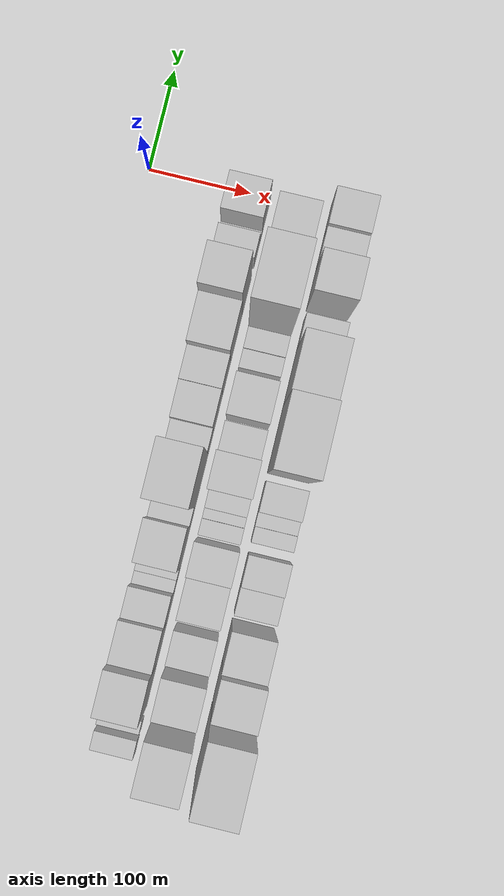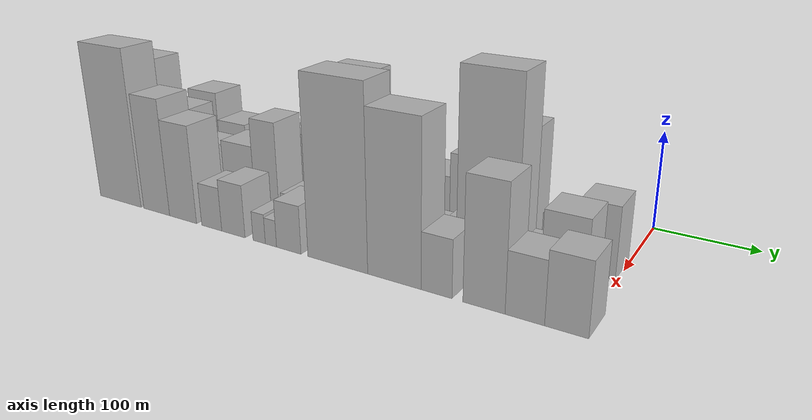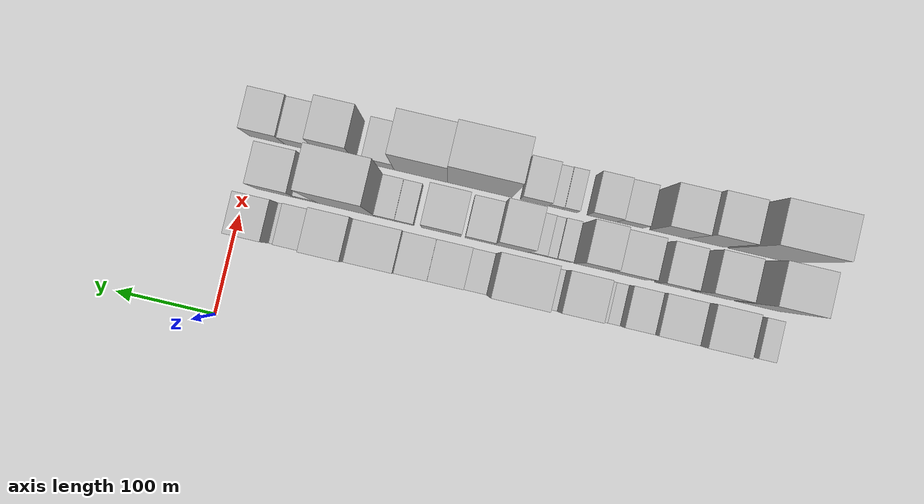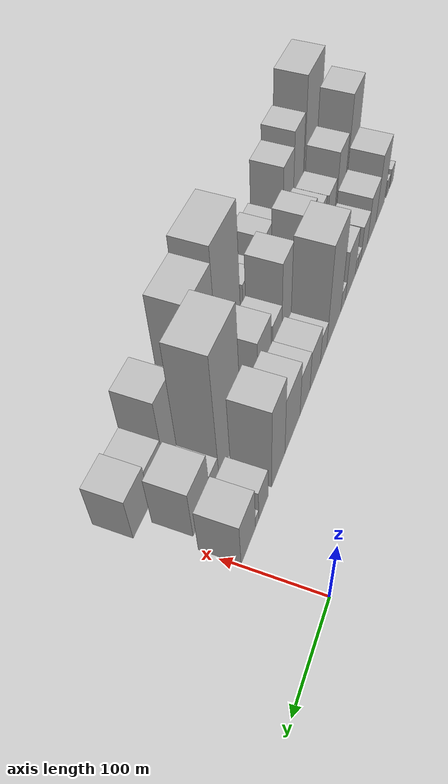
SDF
<sdf version="1.6">
 <world name="default">
  <model name="building_1">
   <static>1</static>
   <pose>100.0000 -527.3287 0 0.000000 0.000000 0.000000</pose>
   <link name="link">
    <pose>0 0 15.00 0 0 0</pose>
    <collision name="collision"><geometry><box><size>40.0000 17.3426 30.0000</size></box></geometry></collision>
    <visual name="visual">
     <cast_shadows>0</cast_shadows>
     <geometry><box><size>40.0000 17.3426 30.0000</size></box></geometry>
     <material>
      <script>
       <uri>model://HANNAS_wall/materials/scripts</uri>
       <uri>model://HANNAS_wall/materials/textures</uri>
       <name>vrc/HANNAS_wall</name>
      </script>
     </material>
    </visual>
   </link>
  </model>
  <model name="building_2">
   <static>1</static>
   <pose>100.0000 -507.4993 0 0.000000 0.000000 0.000000</pose>
   <link name="link">
    <pose>0 0 13.50 0 0 0</pose>
    <collision name="collision"><geometry><box><size>40.0000 12.3162 27.0000</size></box></geometry></collision>
    <visual name="visual">
     <cast_shadows>0</cast_shadows>
     <geometry><box><size>40.0000 12.3162 27.0000</size></box></geometry>
     <material>
      <script>
       <uri>model://HANNAS_wall/materials/scripts</uri>
       <uri>model://HANNAS_wall/materials/textures</uri>
       <name>vrc/HANNAS_wall</name>
      </script>
     </material>
    </visual>
   </link>
  </model>
  <model name="building_3">
   <static>1</static>
   <pose>100.0000 -472.0007 0 0.000000 0.000000 0.000000</pose>
   <link name="link">
    <pose>0 0 51.00 0 0 0</pose>
    <collision name="collision"><geometry><box><size>40.0000 40.6811 102.0000</size></box></geometry></collision>
    <visual name="visual">
     <cast_shadows>0</cast_shadows>
     <geometry><box><size>40.0000 40.6811 102.0000</size></box></geometry>
     <material>
      <script>
       <uri>model://HANNAS_wall/materials/scripts</uri>
       <uri>model://HANNAS_wall/materials/textures</uri>
       <name>vrc/HANNAS_wall</name>
      </script>
     </material>
    </visual>
   </link>
  </model>
  <model name="building_4">
   <static>1</static>
   <pose>100.0000 -432.3073 0 0.000000 0.000000 0.000000</pose>
   <link name="link">
    <pose>0 0 36.00 0 0 0</pose>
    <collision name="collision"><geometry><box><size>40.0000 38.7056 72.0000</size></box></geometry></collision>
    <visual name="visual">
     <cast_shadows>0</cast_shadows>
     <geometry><box><size>40.0000 38.7056 72.0000</size></box></geometry>
     <material>
      <script>
       <uri>model://HANNAS_wall/materials/scripts</uri>
       <uri>model://HANNAS_wall/materials/textures</uri>
       <name>vrc/HANNAS_wall</name>
      </script>
     </material>
    </visual>
   </link>
  </model>
  <model name="building_5">
   <static>1</static>
   <pose>100.0000 -398.5866 0 0.000000 0.000000 0.000000</pose>
   <link name="link">
    <pose>0 0 27.00 0 0 0</pose>
    <collision name="collision"><geometry><box><size>40.0000 28.7358 54.0000</size></box></geometry></collision>
    <visual name="visual">
     <cast_shadows>0</cast_shadows>
     <geometry><box><size>40.0000 28.7358 54.0000</size></box></geometry>
     <material>
      <script>
       <uri>model://HANNAS_wall/materials/scripts</uri>
       <uri>model://HANNAS_wall/materials/textures</uri>
       <name>vrc/HANNAS_wall</name>
      </script>
     </material>
    </visual>
   </link>
  </model>
  <model name="building_6">
   <static>1</static>
   <pose>100.0000 -378.2275 0 0.000000 0.000000 0.000000</pose>
   <link name="link">
    <pose>0 0 12.00 0 0 0</pose>
    <collision name="collision"><geometry><box><size>40.0000 11.9825 24.0000</size></box></geometry></collision>
    <visual name="visual">
     <cast_shadows>0</cast_shadows>
     <geometry><box><size>40.0000 11.9825 24.0000</size></box></geometry>
     <material>
      <script>
       <uri>model://HANNAS_wall/materials/scripts</uri>
       <uri>model://HANNAS_wall/materials/textures</uri>
       <name>vrc/HANNAS_wall</name>
      </script>
     </material>
    </visual>
   </link>
  </model>
  <model name="building_7">
   <static>1</static>
   <pose>100.0000 -366.8585 0 0.000000 0.000000 0.000000</pose>
   <link name="link">
    <pose>0 0 12.00 0 0 0</pose>
    <collision name="collision"><geometry><box><size>40.0000 10.7555 24.0000</size></box></geometry></collision>
    <visual name="visual">
     <cast_shadows>0</cast_shadows>
     <geometry><box><size>40.0000 10.7555 24.0000</size></box></geometry>
     <material>
      <script>
       <uri>model://HANNAS_wall/materials/scripts</uri>
       <uri>model://HANNAS_wall/materials/textures</uri>
       <name>vrc/HANNAS_wall</name>
      </script>
     </material>
    </visual>
   </link>
  </model>
  <model name="building_8">
   <static>1</static>
   <pose>100.0000 -341.6340 0 0.000000 0.000000 0.000000</pose>
   <link name="link">
    <pose>0 0 37.50 0 0 0</pose>
    <collision name="collision"><geometry><box><size>40.0000 39.6934 75.0000</size></box></geometry></collision>
    <visual name="visual">
     <cast_shadows>0</cast_shadows>
     <geometry><box><size>40.0000 39.6934 75.0000</size></box></geometry>
     <material>
      <script>
       <uri>model://HANNAS_wall/materials/scripts</uri>
       <uri>model://HANNAS_wall/materials/textures</uri>
       <name>vrc/HANNAS_wall</name>
      </script>
     </material>
    </visual>
   </link>
  </model>
  <model name="building_9">
   <static>1</static>
   <pose>100.0000 -312.8995 0 0.000000 0.000000 0.000000</pose>
   <link name="link">
    <pose>0 0 15.00 0 0 0</pose>
    <collision name="collision"><geometry><box><size>40.0000 17.7757 30.0000</size></box></geometry></collision>
    <visual name="visual">
     <cast_shadows>0</cast_shadows>
     <geometry><box><size>40.0000 17.7757 30.0000</size></box></geometry>
     <material>
      <script>
       <uri>model://HANNAS_wall/materials/scripts</uri>
       <uri>model://HANNAS_wall/materials/textures</uri>
       <name>vrc/HANNAS_wall</name>
      </script>
     </material>
    </visual>
   </link>
  </model>
  <model name="building_10">
   <static>1</static>
   <pose>100.0000 -278.1690 0 0.000000 0.000000 0.000000</pose>
   <link name="link">
    <pose>0 0 75.00 0 0 0</pose>
    <collision name="collision"><geometry><box><size>40.0000 51.6853 150.0000</size></box></geometry></collision>
    <visual name="visual">
     <cast_shadows>0</cast_shadows>
     <geometry><box><size>40.0000 51.6853 150.0000</size></box></geometry>
     <material>
      <script>
       <uri>model://HANNAS_wall/materials/scripts</uri>
       <uri>model://HANNAS_wall/materials/textures</uri>
       <name>vrc/HANNAS_wall</name>
      </script>
     </material>
    </visual>
   </link>
  </model>
  <model name="building_11">
   <static>1</static>
   <pose>100.0000 -241.2043 0 0.000000 0.000000 0.000000</pose>
   <link name="link">
    <pose>0 0 21.00 0 0 0</pose>
    <collision name="collision"><geometry><box><size>40.0000 22.2441 42.0000</size></box></geometry></collision>
    <visual name="visual">
     <cast_shadows>0</cast_shadows>
     <geometry><box><size>40.0000 22.2441 42.0000</size></box></geometry>
     <material>
      <script>
       <uri>model://HANNAS_wall/materials/scripts</uri>
       <uri>model://HANNAS_wall/materials/textures</uri>
       <name>vrc/HANNAS_wall</name>
      </script>
     </material>
    </visual>
   </link>
  </model>
  <model name="building_12">
   <static>1</static>
   <pose>100.0000 -212.5697 0 0.000000 0.000000 0.000000</pose>
   <link name="link">
    <pose>0 0 30.00 0 0 0</pose>
    <collision name="collision"><geometry><box><size>40.0000 35.0252 60.0000</size></box></geometry></collision>
    <visual name="visual">
     <cast_shadows>0</cast_shadows>
     <geometry><box><size>40.0000 35.0252 60.0000</size></box></geometry>
     <material>
      <script>
       <uri>model://HANNAS_wall/materials/scripts</uri>
       <uri>model://HANNAS_wall/materials/textures</uri>
       <name>vrc/HANNAS_wall</name>
      </script>
     </material>
    </visual>
   </link>
  </model>
  <model name="building_13">
   <static>1</static>
   <pose>100.0000 -179.1213 0 0.000000 0.000000 0.000000</pose>
   <link name="link">
    <pose>0 0 31.50 0 0 0</pose>
    <collision name="collision"><geometry><box><size>40.0000 31.8716 63.0000</size></box></geometry></collision>
    <visual name="visual">
     <cast_shadows>0</cast_shadows>
     <geometry><box><size>40.0000 31.8716 63.0000</size></box></geometry>
     <material>
      <script>
       <uri>model://HANNAS_wall/materials/scripts</uri>
       <uri>model://HANNAS_wall/materials/textures</uri>
       <name>vrc/HANNAS_wall</name>
      </script>
     </material>
    </visual>
   </link>
  </model>
  <model name="building_14">
   <static>1</static>
   <pose>100.0000 -140.4751 0 0.000000 0.000000 0.000000</pose>
   <link name="link">
    <pose>0 0 43.50 0 0 0</pose>
    <collision name="collision"><geometry><box><size>40.0000 45.4209 87.0000</size></box></geometry></collision>
    <visual name="visual">
     <cast_shadows>0</cast_shadows>
     <geometry><box><size>40.0000 45.4209 87.0000</size></box></geometry>
     <material>
      <script>
       <uri>model://HANNAS_wall/materials/scripts</uri>
       <uri>model://HANNAS_wall/materials/textures</uri>
       <name>vrc/HANNAS_wall</name>
      </script>
     </material>
    </visual>
   </link>
  </model>
  <model name="building_15">
   <static>1</static>
   <pose>100.0000 -99.0353 0 0.000000 0.000000 0.000000</pose>
   <link name="link">
    <pose>0 0 61.50 0 0 0</pose>
    <collision name="collision"><geometry><box><size>40.0000 37.4587 123.0000</size></box></geometry></collision>
    <visual name="visual">
     <cast_shadows>0</cast_shadows>
     <geometry><box><size>40.0000 37.4587 123.0000</size></box></geometry>
     <material>
      <script>
       <uri>model://HANNAS_wall/materials/scripts</uri>
       <uri>model://HANNAS_wall/materials/textures</uri>
       <name>vrc/HANNAS_wall</name>
      </script>
     </material>
    </visual>
   </link>
  </model>
  <model name="building_16">
   <static>1</static>
   <pose>100.0000 -58.1016 0 0.000000 0.000000 0.000000</pose>
   <link name="link">
    <pose>0 0 24.00 0 0 0</pose>
    <collision name="collision"><geometry><box><size>40.0000 24.4087 48.0000</size></box></geometry></collision>
    <visual name="visual">
     <cast_shadows>0</cast_shadows>
     <geometry><box><size>40.0000 24.4087 48.0000</size></box></geometry>
     <material>
      <script>
       <uri>model://HANNAS_wall/materials/scripts</uri>
       <uri>model://HANNAS_wall/materials/textures</uri>
       <name>vrc/HANNAS_wall</name>
      </script>
     </material>
    </visual>
   </link>
  </model>
  <model name="building_17">
   <static>1</static>
   <pose>100.0000 -41.6353 0 0.000000 0.000000 0.000000</pose>
   <link name="link">
    <pose>0 0 9.00 0 0 0</pose>
    <collision name="collision"><geometry><box><size>40.0000 8.5240 18.0000</size></box></geometry></collision>
    <visual name="visual">
     <cast_shadows>0</cast_shadows>
     <geometry><box><size>40.0000 8.5240 18.0000</size></box></geometry>
     <material>
      <script>
       <uri>model://HANNAS_wall/materials/scripts</uri>
       <uri>model://HANNAS_wall/materials/textures</uri>
       <name>vrc/HANNAS_wall</name>
      </script>
     </material>
    </visual>
   </link>
  </model>
  <model name="building_18">
   <static>1</static>
   <pose>100.0000 -19.5050 0 0.000000 0.000000 0.000000</pose>
   <link name="link">
    <pose>0 0 34.50 0 0 0</pose>
    <collision name="collision"><geometry><box><size>40.0000 35.7368 69.0000</size></box></geometry></collision>
    <visual name="visual">
     <cast_shadows>0</cast_shadows>
     <geometry><box><size>40.0000 35.7368 69.0000</size></box></geometry>
     <material>
      <script>
       <uri>model://HANNAS_wall/materials/scripts</uri>
       <uri>model://HANNAS_wall/materials/textures</uri>
       <name>vrc/HANNAS_wall</name>
      </script>
     </material>
    </visual>
   </link>
  </model>
  <model name="building_35">
   <static>1</static>
   <pose>149.0000 -513.6610 0 0.000000 0.000000 0.000000</pose>
   <link name="link">
    <pose>0 0 72.00 0 0 0</pose>
    <collision name="collision"><geometry><box><size>40.0000 44.6781 144.0000</size></box></geometry></collision>
    <visual name="visual">
     <cast_shadows>0</cast_shadows>
     <geometry><box><size>40.0000 44.6781 144.0000</size></box></geometry>
     <material>
      <script>
       <uri>model://HANNAS_wall/materials/scripts</uri>
       <uri>model://HANNAS_wall/materials/textures</uri>
       <name>vrc/HANNAS_wall</name>
      </script>
     </material>
    </visual>
   </link>
  </model>
  <model name="building_36">
   <static>1</static>
   <pose>149.0000 -466.6545 0 0.000000 0.000000 0.000000</pose>
   <link name="link">
    <pose>0 0 48.00 0 0 0</pose>
    <collision name="collision"><geometry><box><size>40.0000 37.3347 96.0000</size></box></geometry></collision>
    <visual name="visual">
     <cast_shadows>0</cast_shadows>
     <geometry><box><size>40.0000 37.3347 96.0000</size></box></geometry>
     <material>
      <script>
       <uri>model://HANNAS_wall/materials/scripts</uri>
       <uri>model://HANNAS_wall/materials/textures</uri>
       <name>vrc/HANNAS_wall</name>
      </script>
     </material>
    </visual>
   </link>
  </model>
  <model name="building_37">
   <static>1</static>
   <pose>149.0000 -427.1557 0 0.000000 0.000000 0.000000</pose>
   <link name="link">
    <pose>0 0 31.50 0 0 0</pose>
    <collision name="collision"><geometry><box><size>40.0000 31.6630 63.0000</size></box></geometry></collision>
    <visual name="visual">
     <cast_shadows>0</cast_shadows>
     <geometry><box><size>40.0000 31.6630 63.0000</size></box></geometry>
     <material>
      <script>
       <uri>model://HANNAS_wall/materials/scripts</uri>
       <uri>model://HANNAS_wall/materials/textures</uri>
       <name>vrc/HANNAS_wall</name>
      </script>
     </material>
    </visual>
   </link>
  </model>
  <model name="building_38">
   <static>1</static>
   <pose>149.0000 -381.2080 0 0.000000 0.000000 0.000000</pose>
   <link name="link">
    <pose>0 0 36.00 0 0 0</pose>
    <collision name="collision"><geometry><box><size>40.0000 40.2323 72.0000</size></box></geometry></collision>
    <visual name="visual">
     <cast_shadows>0</cast_shadows>
     <geometry><box><size>40.0000 40.2323 72.0000</size></box></geometry>
     <material>
      <script>
       <uri>model://HANNAS_wall/materials/scripts</uri>
       <uri>model://HANNAS_wall/materials/textures</uri>
       <name>vrc/HANNAS_wall</name>
      </script>
     </material>
    </visual>
   </link>
  </model>
  <model name="building_39">
   <static>1</static>
   <pose>149.0000 -345.5771 0 0.000000 0.000000 0.000000</pose>
   <link name="link">
    <pose>0 0 51.00 0 0 0</pose>
    <collision name="collision"><geometry><box><size>40.0000 31.0294 102.0000</size></box></geometry></collision>
    <visual name="visual">
     <cast_shadows>0</cast_shadows>
     <geometry><box><size>40.0000 31.0294 102.0000</size></box></geometry>
     <material>
      <script>
       <uri>model://HANNAS_wall/materials/scripts</uri>
       <uri>model://HANNAS_wall/materials/textures</uri>
       <name>vrc/HANNAS_wall</name>
      </script>
     </material>
    </visual>
   </link>
  </model>
  <model name="building_40">
   <static>1</static>
   <pose>149.0000 -319.2591 0 0.000000 0.000000 0.000000</pose>
   <link name="link">
    <pose>0 0 15.00 0 0 0</pose>
    <collision name="collision"><geometry><box><size>40.0000 15.6065 30.0000</size></box></geometry></collision>
    <visual name="visual">
     <cast_shadows>0</cast_shadows>
     <geometry><box><size>40.0000 15.6065 30.0000</size></box></geometry>
     <material>
      <script>
       <uri>model://HANNAS_wall/materials/scripts</uri>
       <uri>model://HANNAS_wall/materials/textures</uri>
       <name>vrc/HANNAS_wall</name>
      </script>
     </material>
    </visual>
   </link>
  </model>
  <model name="building_41">
   <static>1</static>
   <pose>149.0000 -306.5097 0 0.000000 0.000000 0.000000</pose>
   <link name="link">
    <pose>0 0 12.00 0 0 0</pose>
    <collision name="collision"><geometry><box><size>40.0000 9.8923 24.0000</size></box></geometry></collision>
    <visual name="visual">
     <cast_shadows>0</cast_shadows>
     <geometry><box><size>40.0000 9.8923 24.0000</size></box></geometry>
     <material>
      <script>
       <uri>model://HANNAS_wall/materials/scripts</uri>
       <uri>model://HANNAS_wall/materials/textures</uri>
       <name>vrc/HANNAS_wall</name>
      </script>
     </material>
    </visual>
   </link>
  </model>
  <model name="building_42">
   <static>1</static>
   <pose>149.0000 -292.9622 0 0.000000 0.000000 0.000000</pose>
   <link name="link">
    <pose>0 0 15.00 0 0 0</pose>
    <collision name="collision"><geometry><box><size>40.0000 17.2029 30.0000</size></box></geometry></collision>
    <visual name="visual">
     <cast_shadows>0</cast_shadows>
     <geometry><box><size>40.0000 17.2029 30.0000</size></box></geometry>
     <material>
      <script>
       <uri>model://HANNAS_wall/materials/scripts</uri>
       <uri>model://HANNAS_wall/materials/textures</uri>
       <name>vrc/HANNAS_wall</name>
      </script>
     </material>
    </visual>
   </link>
  </model>
  <model name="building_43">
   <static>1</static>
   <pose>149.0000 -267.3180 0 0.000000 0.000000 0.000000</pose>
   <link name="link">
    <pose>0 0 55.50 0 0 0</pose>
    <collision name="collision"><geometry><box><size>40.0000 34.0854 111.0000</size></box></geometry></collision>
    <visual name="visual">
     <cast_shadows>0</cast_shadows>
     <geometry><box><size>40.0000 34.0854 111.0000</size></box></geometry>
     <material>
      <script>
       <uri>model://HANNAS_wall/materials/scripts</uri>
       <uri>model://HANNAS_wall/materials/textures</uri>
       <name>vrc/HANNAS_wall</name>
      </script>
     </material>
    </visual>
   </link>
  </model>
  <model name="building_44">
   <static>1</static>
   <pose>149.0000 -235.5309 0 0.000000 0.000000 0.000000</pose>
   <link name="link">
    <pose>0 0 25.50 0 0 0</pose>
    <collision name="collision"><geometry><box><size>40.0000 29.4887 51.0000</size></box></geometry></collision>
    <visual name="visual">
     <cast_shadows>0</cast_shadows>
     <geometry><box><size>40.0000 29.4887 51.0000</size></box></geometry>
     <material>
      <script>
       <uri>model://HANNAS_wall/materials/scripts</uri>
       <uri>model://HANNAS_wall/materials/textures</uri>
       <name>vrc/HANNAS_wall</name>
      </script>
     </material>
    </visual>
   </link>
  </model>
  <model name="building_45">
   <static>1</static>
   <pose>149.0000 -197.1301 0 0.000000 0.000000 0.000000</pose>
   <link name="link">
    <pose>0 0 37.50 0 0 0</pose>
    <collision name="collision"><geometry><box><size>40.0000 39.3130 75.0000</size></box></geometry></collision>
    <visual name="visual">
     <cast_shadows>0</cast_shadows>
     <geometry><box><size>40.0000 39.3130 75.0000</size></box></geometry>
     <material>
      <script>
       <uri>model://HANNAS_wall/materials/scripts</uri>
       <uri>model://HANNAS_wall/materials/textures</uri>
       <name>vrc/HANNAS_wall</name>
      </script>
     </material>
    </visual>
   </link>
  </model>
  <model name="building_46">
   <static>1</static>
   <pose>149.0000 -160.2968 0 0.000000 0.000000 0.000000</pose>
   <link name="link">
    <pose>0 0 16.50 0 0 0</pose>
    <collision name="collision"><geometry><box><size>40.0000 18.3535 33.0000</size></box></geometry></collision>
    <visual name="visual">
     <cast_shadows>0</cast_shadows>
     <geometry><box><size>40.0000 18.3535 33.0000</size></box></geometry>
     <material>
      <script>
       <uri>model://HANNAS_wall/materials/scripts</uri>
       <uri>model://HANNAS_wall/materials/textures</uri>
       <name>vrc/HANNAS_wall</name>
      </script>
     </material>
    </visual>
   </link>
  </model>
  <model name="building_47">
   <static>1</static>
   <pose>149.0000 -140.8516 0 0.000000 0.000000 0.000000</pose>
   <link name="link">
    <pose>0 0 18.00 0 0 0</pose>
    <collision name="collision"><geometry><box><size>40.0000 20.5370 36.0000</size></box></geometry></collision>
    <visual name="visual">
     <cast_shadows>0</cast_shadows>
     <geometry><box><size>40.0000 20.5370 36.0000</size></box></geometry>
     <material>
      <script>
       <uri>model://HANNAS_wall/materials/scripts</uri>
       <uri>model://HANNAS_wall/materials/textures</uri>
       <name>vrc/HANNAS_wall</name>
      </script>
     </material>
    </visual>
   </link>
  </model>
  <model name="building_48">
   <static>1</static>
   <pose>149.0000 -101.6946 0 0.000000 0.000000 0.000000</pose>
   <link name="link">
    <pose>0 0 93.00 0 0 0</pose>
    <collision name="collision"><geometry><box><size>40.0000 57.7770 186.0000</size></box></geometry></collision>
    <visual name="visual">
     <cast_shadows>0</cast_shadows>
     <geometry><box><size>40.0000 57.7770 186.0000</size></box></geometry>
     <material>
      <script>
       <uri>model://HANNAS_wall/materials/scripts</uri>
       <uri>model://HANNAS_wall/materials/textures</uri>
       <name>vrc/HANNAS_wall</name>
      </script>
     </material>
    </visual>
   </link>
  </model>
  <model name="building_49">
   <static>1</static>
   <pose>149.0000 -62.0989 0 0.000000 0.000000 0.000000</pose>
   <link name="link">
    <pose>0 0 18.00 0 0 0</pose>
    <collision name="collision"><geometry><box><size>40.0000 21.4145 36.0000</size></box></geometry></collision>
    <visual name="visual">
     <cast_shadows>0</cast_shadows>
     <geometry><box><size>40.0000 21.4145 36.0000</size></box></geometry>
     <material>
      <script>
       <uri>model://HANNAS_wall/materials/scripts</uri>
       <uri>model://HANNAS_wall/materials/textures</uri>
       <name>vrc/HANNAS_wall</name>
      </script>
     </material>
    </visual>
   </link>
  </model>
  <model name="building_50">
   <static>1</static>
   <pose>149.0000 -31.4144 0 0.000000 0.000000 0.000000</pose>
   <link name="link">
    <pose>0 0 37.50 0 0 0</pose>
    <collision name="collision"><geometry><box><size>40.0000 39.9545 75.0000</size></box></geometry></collision>
    <visual name="visual">
     <cast_shadows>0</cast_shadows>
     <geometry><box><size>40.0000 39.9545 75.0000</size></box></geometry>
     <material>
      <script>
       <uri>model://HANNAS_wall/materials/scripts</uri>
       <uri>model://HANNAS_wall/materials/textures</uri>
       <name>vrc/HANNAS_wall</name>
      </script>
     </material>
    </visual>
   </link>
  </model>
  <model name="building_67">
   <static>1</static>
   <pose>198.0000 -504.9749 0 0.000000 0.000000 0.000000</pose>
   <link name="link">
    <pose>0 0 84.00 0 0 0</pose>
    <collision name="collision"><geometry><box><size>40.0000 62.0502 168.0000</size></box></geometry></collision>
    <visual name="visual">
     <cast_shadows>0</cast_shadows>
     <geometry><box><size>40.0000 62.0502 168.0000</size></box></geometry>
     <material>
      <script>
       <uri>model://HANNAS_wall/materials/scripts</uri>
       <uri>model://HANNAS_wall/materials/textures</uri>
       <name>vrc/HANNAS_wall</name>
      </script>
     </material>
    </visual>
   </link>
  </model>
  <model name="building_68">
   <static>1</static>
   <pose>198.0000 -451.3016 0 0.000000 0.000000 0.000000</pose>
   <link name="link">
    <pose>0 0 61.50 0 0 0</pose>
    <collision name="collision"><geometry><box><size>40.0000 37.2966 123.0000</size></box></geometry></collision>
    <visual name="visual">
     <cast_shadows>0</cast_shadows>
     <geometry><box><size>40.0000 37.2966 123.0000</size></box></geometry>
     <material>
      <script>
       <uri>model://HANNAS_wall/materials/scripts</uri>
       <uri>model://HANNAS_wall/materials/textures</uri>
       <name>vrc/HANNAS_wall</name>
      </script>
     </material>
    </visual>
   </link>
  </model>
  <model name="building_69">
   <static>1</static>
   <pose>198.0000 -414.0233 0 0.000000 0.000000 0.000000</pose>
   <link name="link">
    <pose>0 0 51.00 0 0 0</pose>
    <collision name="collision"><geometry><box><size>40.0000 37.2601 102.0000</size></box></geometry></collision>
    <visual name="visual">
     <cast_shadows>0</cast_shadows>
     <geometry><box><size>40.0000 37.2601 102.0000</size></box></geometry>
     <material>
      <script>
       <uri>model://HANNAS_wall/materials/scripts</uri>
       <uri>model://HANNAS_wall/materials/textures</uri>
       <name>vrc/HANNAS_wall</name>
      </script>
     </material>
    </visual>
   </link>
  </model>
  <model name="building_70">
   <static>1</static>
   <pose>198.0000 -375.1692 0 0.000000 0.000000 0.000000</pose>
   <link name="link">
    <pose>0 0 22.50 0 0 0</pose>
    <collision name="collision"><geometry><box><size>40.0000 26.4480 45.0000</size></box></geometry></collision>
    <visual name="visual">
     <cast_shadows>0</cast_shadows>
     <geometry><box><size>40.0000 26.4480 45.0000</size></box></geometry>
     <material>
      <script>
       <uri>model://HANNAS_wall/materials/scripts</uri>
       <uri>model://HANNAS_wall/materials/textures</uri>
       <name>vrc/HANNAS_wall</name>
      </script>
     </material>
    </visual>
   </link>
  </model>
  <model name="building_71">
   <static>1</static>
   <pose>198.0000 -347.0749 0 0.000000 0.000000 0.000000</pose>
   <link name="link">
    <pose>0 0 27.00 0 0 0</pose>
    <collision name="collision"><geometry><box><size>40.0000 29.7407 54.0000</size></box></geometry></collision>
    <visual name="visual">
     <cast_shadows>0</cast_shadows>
     <geometry><box><size>40.0000 29.7407 54.0000</size></box></geometry>
     <material>
      <script>
       <uri>model://HANNAS_wall/materials/scripts</uri>
       <uri>model://HANNAS_wall/materials/textures</uri>
       <name>vrc/HANNAS_wall</name>
      </script>
     </material>
    </visual>
   </link>
  </model>
  <model name="building_72">
   <static>1</static>
   <pose>198.0000 -314.6844 0 0.000000 0.000000 0.000000</pose>
   <link name="link">
    <pose>0 0 15.00 0 0 0</pose>
    <collision name="collision"><geometry><box><size>40.0000 15.0403 30.0000</size></box></geometry></collision>
    <visual name="visual">
     <cast_shadows>0</cast_shadows>
     <geometry><box><size>40.0000 15.0403 30.0000</size></box></geometry>
     <material>
      <script>
       <uri>model://HANNAS_wall/materials/scripts</uri>
       <uri>model://HANNAS_wall/materials/textures</uri>
       <name>vrc/HANNAS_wall</name>
      </script>
     </material>
    </visual>
   </link>
  </model>
  <model name="building_73">
   <static>1</static>
   <pose>198.0000 -300.4160 0 0.000000 0.000000 0.000000</pose>
   <link name="link">
    <pose>0 0 13.50 0 0 0</pose>
    <collision name="collision"><geometry><box><size>40.0000 13.4965 27.0000</size></box></geometry></collision>
    <visual name="visual">
     <cast_shadows>0</cast_shadows>
     <geometry><box><size>40.0000 13.4965 27.0000</size></box></geometry>
     <material>
      <script>
       <uri>model://HANNAS_wall/materials/scripts</uri>
       <uri>model://HANNAS_wall/materials/textures</uri>
       <name>vrc/HANNAS_wall</name>
      </script>
     </material>
    </visual>
   </link>
  </model>
  <model name="building_74">
   <static>1</static>
   <pose>198.0000 -279.3317 0 0.000000 0.000000 0.000000</pose>
   <link name="link">
    <pose>0 0 24.00 0 0 0</pose>
    <collision name="collision"><geometry><box><size>40.0000 28.6721 48.0000</size></box></geometry></collision>
    <visual name="visual">
     <cast_shadows>0</cast_shadows>
     <geometry><box><size>40.0000 28.6721 48.0000</size></box></geometry>
     <material>
      <script>
       <uri>model://HANNAS_wall/materials/scripts</uri>
       <uri>model://HANNAS_wall/materials/textures</uri>
       <name>vrc/HANNAS_wall</name>
      </script>
     </material>
    </visual>
   </link>
  </model>
  <model name="building_75">
   <static>1</static>
   <pose>198.0000 -224.3895 0 0.000000 0.000000 0.000000</pose>
   <link name="link">
    <pose>0 0 87.00 0 0 0</pose>
    <collision name="collision"><geometry><box><size>40.0000 65.2123 174.0000</size></box></geometry></collision>
    <visual name="visual">
     <cast_shadows>0</cast_shadows>
     <geometry><box><size>40.0000 65.2123 174.0000</size></box></geometry>
     <material>
      <script>
       <uri>model://HANNAS_wall/materials/scripts</uri>
       <uri>model://HANNAS_wall/materials/textures</uri>
       <name>vrc/HANNAS_wall</name>
      </script>
     </material>
    </visual>
   </link>
  </model>
  <model name="building_76">
   <static>1</static>
   <pose>198.0000 -164.8681 0 0.000000 0.000000 0.000000</pose>
   <link name="link">
    <pose>0 0 76.50 0 0 0</pose>
    <collision name="collision"><geometry><box><size>40.0000 53.8304 153.0000</size></box></geometry></collision>
    <visual name="visual">
     <cast_shadows>0</cast_shadows>
     <geometry><box><size>40.0000 53.8304 153.0000</size></box></geometry>
     <material>
      <script>
       <uri>model://HANNAS_wall/materials/scripts</uri>
       <uri>model://HANNAS_wall/materials/textures</uri>
       <name>vrc/HANNAS_wall</name>
      </script>
     </material>
    </visual>
   </link>
  </model>
  <model name="building_77">
   <static>1</static>
   <pose>198.0000 -123.2888 0 0.000000 0.000000 0.000000</pose>
   <link name="link">
    <pose>0 0 27.00 0 0 0</pose>
    <collision name="collision"><geometry><box><size>40.0000 29.3283 54.0000</size></box></geometry></collision>
    <visual name="visual">
     <cast_shadows>0</cast_shadows>
     <geometry><box><size>40.0000 29.3283 54.0000</size></box></geometry>
     <material>
      <script>
       <uri>model://HANNAS_wall/materials/scripts</uri>
       <uri>model://HANNAS_wall/materials/textures</uri>
       <name>vrc/HANNAS_wall</name>
      </script>
     </material>
    </visual>
   </link>
  </model>
  <model name="building_78">
   <static>1</static>
   <pose>198.0000 -79.8004 0 0.000000 0.000000 0.000000</pose>
   <link name="link">
    <pose>0 0 57.00 0 0 0</pose>
    <collision name="collision"><geometry><box><size>40.0000 37.6486 114.0000</size></box></geometry></collision>
    <visual name="visual">
     <cast_shadows>0</cast_shadows>
     <geometry><box><size>40.0000 37.6486 114.0000</size></box></geometry>
     <material>
      <script>
       <uri>model://HANNAS_wall/materials/scripts</uri>
       <uri>model://HANNAS_wall/materials/textures</uri>
       <name>vrc/HANNAS_wall</name>
      </script>
     </material>
    </visual>
   </link>
  </model>
  <model name="building_79">
   <static>1</static>
   <pose>198.0000 -44.2653 0 0.000000 0.000000 0.000000</pose>
   <link name="link">
    <pose>0 0 28.50 0 0 0</pose>
    <collision name="collision"><geometry><box><size>40.0000 33.4216 57.0000</size></box></geometry></collision>
    <visual name="visual">
     <cast_shadows>0</cast_shadows>
     <geometry><box><size>40.0000 33.4216 57.0000</size></box></geometry>
     <material>
      <script>
       <uri>model://HANNAS_wall/materials/scripts</uri>
       <uri>model://HANNAS_wall/materials/textures</uri>
       <name>vrc/HANNAS_wall</name>
      </script>
     </material>
    </visual>
   </link>
  </model>
  <model name="building_80">
   <static>1</static>
   <pose>198.0000 -9.7621 0 0.000000 0.000000 0.000000</pose>
   <link name="link">
    <pose>0 0 33.00 0 0 0</pose>
    <collision name="collision"><geometry><box><size>40.0000 35.5849 66.0000</size></box></geometry></collision>
    <visual name="visual">
     <cast_shadows>0</cast_shadows>
     <geometry><box><size>40.0000 35.5849 66.0000</size></box></geometry>
     <material>
      <script>
       <uri>model://HANNAS_wall/materials/scripts</uri>
       <uri>model://HANNAS_wall/materials/textures</uri>
       <name>vrc/HANNAS_wall</name>
      </script>
     </material>
    </visual>
   </link>
  </model>
 </world>
</sdf>
